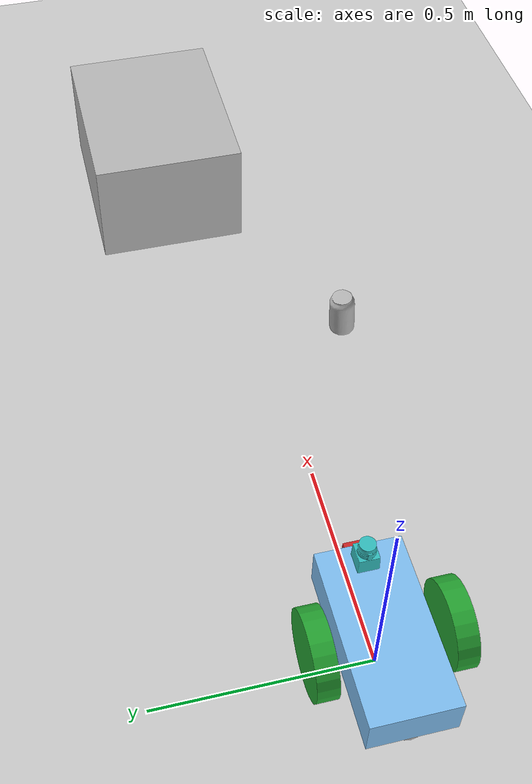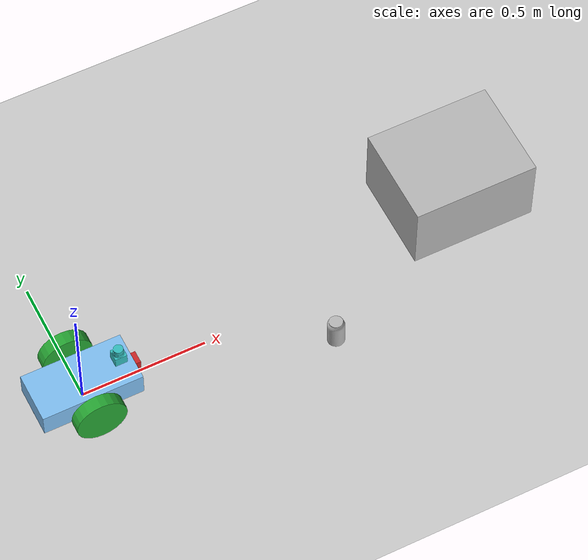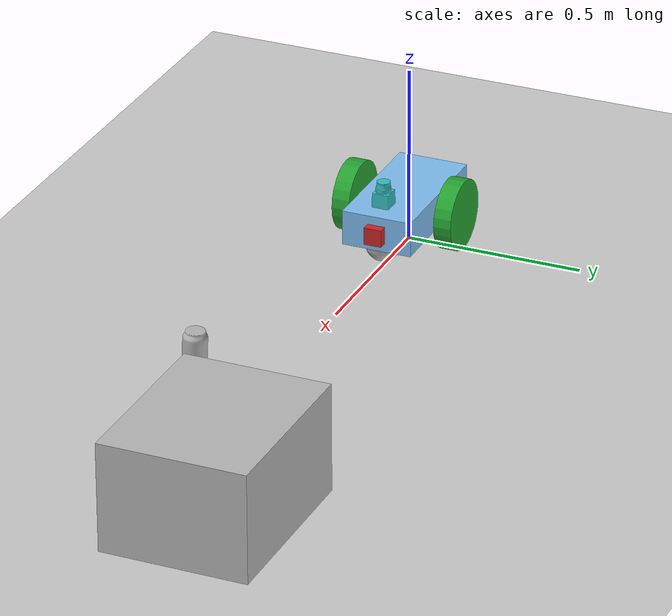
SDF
<sdf version="1.6">
 <world name="default">
  <model name="ground_plane">
   <static>1</static>
   <link name="link">
    <collision name="collision">
     <geometry><plane><normal>0 0 1</normal><size>100 100</size></plane></geometry>
     <surface><friction><ode><mu>100</mu><mu2>50</mu2></ode></friction></surface>
    </collision>
    <visual name="visual">
     <cast_shadows>0</cast_shadows>
     <geometry><plane><normal>0 0 1</normal><size>100 100</size></plane></geometry>
     <material>
      <script><uri>file://media/materials/scripts/gazebo.material</uri><name>Gazebo/Grey</name></script>
     </material>
    </visual>
   </link>
  </model>
  <light name="sun" type="directional">
   <pose>0 0 10 0 -0 0</pose>
   <diffuse>0.8 0.8 0.8 1</diffuse>
   <specular>0.2 0.2 0.2 1</specular>
   <attenuation>
    <range>1000</range>
    <constant>0.9</constant>
    <linear>0.01</linear>
    <quadratic>0.001</quadratic>
   </attenuation>
   <direction>-0.5 0.1 -0.9</direction>
  </light>
  <gravity>0 0 -9.8</gravity>
  <magnetic_field>6e-06 2.3e-05 -4.2e-05</magnetic_field>
  <atmosphere type="adiabatic"/>
  <physics name="default_physics" default="0" type="ode">
   <max_step_size>0.001</max_step_size>
   <real_time_factor>1</real_time_factor>
   <real_time_update_rate>1000</real_time_update_rate>
  </physics>
  <scene><ambient>0.4 0.4 0.4 1</ambient><background>0.7 0.7 0.7 1</background><shadows>1</shadows></scene>
  <spherical_coordinates>
   <surface_model>EARTH_WGS84</surface_model>
   <latitude_deg>0</latitude_deg>
   <longitude_deg>0</longitude_deg>
   <elevation>0</elevation>
   <heading_deg>0</heading_deg>
  </spherical_coordinates>
  <model name="my_robot">
   <link name="robot_footprint">
    <inertial>
     <pose>0.001325 0 0 0 -0 0</pose>
     <mass>15.1</mass>
     <inertia>
      <ixx>0.100002</ixx>
      <ixy>0</ixy>
      <ixz>-1.48675e-07</ixz>
      <iyy>0.103976</iyy>
      <iyz>0</iyz>
      <izz>0.103976</izz>
     </inertia>
    </inertial>
    <collision name="robot_footprint_fixed_joint_lump__collision_collision">
     <geometry><box><size>0.4 0.2 0.1</size></box></geometry>
    </collision>
    <collision name="robot_footprint_fixed_joint_lump__back_caster_collision_collision_1">
     <pose>-0.15 0 -0.05 0 -0 0</pose>
     <geometry><sphere><radius>0.0499</radius></sphere></geometry>
    </collision>
    <collision name="robot_footprint_fixed_joint_lump__front_caster_collision_collision_2">
     <pose>0.15 0 -0.05 0 -0 0</pose>
     <geometry><sphere><radius>0.0499</radius></sphere></geometry>
    </collision>
    <collision name="robot_footprint_fixed_joint_lump__camera_collision_3">
     <pose>0.2 0 0 0 -0 0</pose>
     <geometry><box><size>0.05 0.05 0.05</size></box></geometry>
    </collision>
    <collision name="robot_footprint_fixed_joint_lump__hokuyo_collision_4">
     <pose>0.15 0 0.1 0 -0 0</pose>
     <geometry><box><size>0.1 0.1 0.1</size></box></geometry>
    </collision>
    <visual name="robot_footprint_fixed_joint_lump__chassis_visual_visual">
     <geometry><box><size>0.4 0.2 0.1</size></box></geometry>
     <material>
      <script><name>Gazebo/SkyBlue</name><uri>file://media/materials/scripts/gazebo.material</uri></script>
     </material>
    </visual>
    <visual name="robot_footprint_fixed_joint_lump__back_caster_visual_visual_1">
     <pose>-0.15 0 -0.05 0 -0 0</pose>
     <geometry><sphere><radius>0.05</radius></sphere></geometry>
    </visual>
    <visual name="robot_footprint_fixed_joint_lump__front_caster_visual_visual_2">
     <pose>0.15 0 -0.05 0 -0 0</pose>
     <geometry><sphere><radius>0.05</radius></sphere></geometry>
    </visual>
    <visual name="robot_footprint_fixed_joint_lump__camera_visual_3">
     <pose>0.2 0 0 0 -0 0</pose>
     <geometry><box><size>0.05 0.05 0.05</size></box></geometry>
     <material>
      <script><name>Gazebo/Red</name><uri>file://media/materials/scripts/gazebo.material</uri></script>
     </material>
    </visual>
    <visual name="robot_footprint_fixed_joint_lump__hokuyo_visual_4">
     <pose>0.15 0 0.1 0 -0 0</pose>
     <geometry>
      <mesh><scale>1 1 1</scale><uri>/home/robond/workspace/catkin_ws/src/my_robot/meshes/hokuyo.dae</uri></mesh>
     </geometry>
     <material>
      <script><name>Gazebo/Turquoise</name><uri>file://media/materials/scripts/gazebo.material</uri></script>
     </material>
    </visual>
    <sensor name="camera1" type="camera">
     <update_rate>30</update_rate>
     <camera name="head">
      <horizontal_fov>1.39626</horizontal_fov>
      <image><width>800</width><height>800</height><format>R8G8B8</format></image>
      <clip><near>0.02</near><far>300</far></clip>
     </camera>
     <plugin name="camera_controller" filename="libgazebo_ros_camera.so">
      <alwaysOn>true</alwaysOn>
      <updateRate>0.0</updateRate>
      <cameraName>camera</cameraName>
      <imageTopicName>rgb/image_raw</imageTopicName>
      <cameraInfoTopicName>rgb/camera_info</cameraInfoTopicName>
      <frameName>camera</frameName>
      <hackBaseline>0.07</hackBaseline>
      <distortionK1>0.0</distortionK1>
      <distortionK2>0.0</distortionK2>
      <distortionK3>0.0</distortionK3>
      <distortionT1>0.0</distortionT1>
      <distortionT2>0.0</distortionT2>
      <robotNamespace>/</robotNamespace>
     </plugin>
     <pose>0.2 0 0 0 -0 0</pose>
    </sensor>
    <sensor name="head_hokuyo_sensor" type="ray">
     <visualize>0</visualize>
     <update_rate>40</update_rate>
     <ray>
      <scan>
       <horizontal>
        <samples>720</samples>
        <resolution>1</resolution>
        <min_angle>-1.5708</min_angle>
        <max_angle>1.5708</max_angle>
       </horizontal>
       <vertical><samples>1</samples><min_angle>0</min_angle><max_angle>0</max_angle></vertical>
      </scan>
      <range><min>0.1</min><max>30</max><resolution>0.01</resolution></range>
      <noise><type>gaussian</type><mean>0</mean><stddev>0.01</stddev></noise>
     </ray>
     <plugin name="gazebo_ros_head_hokuyo_controller" filename="libgazebo_ros_laser.so">
      <topicName>/scan</topicName>
      <frameName>hokuyo</frameName>
      <robotNamespace>/</robotNamespace>
     </plugin>
     <pose>0.15 0 0.1 0 -0 0</pose>
    </sensor>
   </link>
   <link name="left_wheel">
    <pose>0 0.15 0 0 -0 0</pose>
    <inertial>
     <pose>0 0 0 1.57079 1.57079 3.14159</pose>
     <mass>5</mass>
     <inertia><ixx>0.1</ixx><ixy>0</ixy><ixz>0</ixz><iyy>0.1</iyy><iyz>0</iyz><izz>0.1</izz></inertia>
    </inertial>
    <collision name="left_wheel_collision">
     <pose>0 0 0 -3.14158 1.57079 -1.57078</pose>
     <geometry><cylinder><length>0.05</length><radius>0.1</radius></cylinder></geometry>
    </collision>
    <visual name="left_wheel_visual">
     <pose>0 0 0 -3.14158 1.57079 -1.57078</pose>
     <geometry><cylinder><length>0.05</length><radius>0.1</radius></cylinder></geometry>
     <material>
      <script><name>Gazebo/Green</name><uri>file://media/materials/scripts/gazebo.material</uri></script>
     </material>
    </visual>
   </link>
   <joint name="left_wheel_hinge" type="revolute">
    <child>left_wheel</child>
    <parent>robot_footprint</parent>
    <axis>
     <xyz>0 1 0</xyz>
     <limit><lower>-1e+16</lower><upper>1e+16</upper></limit>
     <dynamics>
      <damping>1</damping>
      <friction>1</friction>
      <spring_reference>0</spring_reference>
      <spring_stiffness>0</spring_stiffness>
     </dynamics>
     <use_parent_model_frame>1</use_parent_model_frame>
    </axis>
   </joint>
   <link name="right_wheel">
    <pose>0 -0.15 0 0 -0 0</pose>
    <inertial>
     <pose>0 0 0 1.57079 1.57079 3.14159</pose>
     <mass>5</mass>
     <inertia><ixx>0.1</ixx><ixy>0</ixy><ixz>0</ixz><iyy>0.1</iyy><iyz>0</iyz><izz>0.1</izz></inertia>
    </inertial>
    <collision name="right_wheel_collision">
     <pose>0 0 0 -3.14158 1.57079 -1.57078</pose>
     <geometry><cylinder><length>0.05</length><radius>0.1</radius></cylinder></geometry>
    </collision>
    <visual name="right_wheel_visual">
     <pose>0 0 0 -3.14158 1.57079 -1.57078</pose>
     <geometry><cylinder><length>0.05</length><radius>0.1</radius></cylinder></geometry>
     <material>
      <script><name>Gazebo/Green</name><uri>file://media/materials/scripts/gazebo.material</uri></script>
     </material>
    </visual>
   </link>
   <joint name="right_wheel_hinge" type="revolute">
    <child>right_wheel</child>
    <parent>robot_footprint</parent>
    <axis>
     <xyz>0 1 0</xyz>
     <limit><lower>-1e+16</lower><upper>1e+16</upper></limit>
     <dynamics>
      <damping>1</damping>
      <friction>1</friction>
      <spring_reference>0</spring_reference>
      <spring_stiffness>0</spring_stiffness>
     </dynamics>
     <use_parent_model_frame>1</use_parent_model_frame>
    </axis>
   </joint>
   <static>0</static>
   <plugin name="differential_drive_controller" filename="libgazebo_ros_diff_drive.so">
    <legacyMode>false</legacyMode>
    <alwaysOn>true</alwaysOn>
    <updateRate>10</updateRate>
    <leftJoint>left_wheel_hinge</leftJoint>
    <rightJoint>right_wheel_hinge</rightJoint>
    <wheelSeparation>0.4</wheelSeparation>
    <wheelDiameter>0.2</wheelDiameter>
    <torque>10</torque>
    <commandTopic>cmd_vel</commandTopic>
    <odometryTopic>odom</odometryTopic>
    <odometryFrame>odom</odometryFrame>
    <robotBaseFrame>robot_footprint</robotBaseFrame>
    <publishWheelTF>false</publishWheelTF>
    <publishWheelJointState>false</publishWheelJointState>
    <rosDebugLevel>na</rosDebugLevel>
    <wheelAcceleration>0</wheelAcceleration>
    <wheelTorque>5</wheelTorque>
    <odometrySource>world</odometrySource>
    <publishTf>1</publishTf>
    <publishOdomTF>true</publishOdomTF>
    <robotNamespace>/</robotNamespace>
   </plugin>
   <pose>-1.8e-05 -0.012256 0.1 2e-06 0.000459 0.001884</pose>
  </model>
  <model name="cardboard_box">
   <pose>1.61602 0.171784 0.149 0 -0 0</pose>
   <link name="link">
    <inertial>
     <mass>2</mass>
     <inertia>
      <ixx>0.0416667</ixx>
      <ixy>0</ixy>
      <ixz>0</ixz>
      <iyy>0.0566667</iyy>
      <iyz>0</iyz>
      <izz>0.0683333</izz>
     </inertia>
    </inertial>
    <collision name="collision">
     <geometry><box><size>0.5 0.4 0.3</size></box></geometry>
     <surface>
      <friction><ode><mu>1</mu><mu2>1</mu2></ode></friction>
      <contact><ode><kp>1e+07</kp><kd>1</kd><min_depth>0.001</min_depth><max_vel>0.1</max_vel></ode></contact>
     </surface>
    </collision>
    <visual name="visual">
     <pose>0 0 -0.15 0 -0 0</pose>
     <geometry>
      <mesh><uri>model://cardboard_box/meshes/cardboard_box.dae</uri><scale>1.25932 1.00745 0.755591</scale></mesh>
     </geometry>
    </visual>
   </link>
  </model>
  <model name="coke_can">
   <link name="link">
    <inertial>
     <pose>0 0 0.06 0 -0 0</pose>
     <mass>0.39</mass>
     <inertia>
      <ixx>0.00055575</ixx>
      <ixy>0</ixy>
      <ixz>0</ixz>
      <iyy>0.00055575</iyy>
      <iyz>0</iyz>
      <izz>0.0001755</izz>
     </inertia>
    </inertial>
    <collision name="collision">
     <pose>0.003937 0.004724 -0.18 0 -0 0</pose>
     <geometry><mesh><uri>model://coke_can/meshes/coke_can.dae</uri></mesh></geometry>
     <surface>
      <friction><ode><mu>1</mu><mu2>1</mu2></ode></friction>
      <contact><ode><kp>1e+07</kp><kd>1</kd><min_depth>0.001</min_depth><max_vel>0.1</max_vel></ode></contact>
     </surface>
    </collision>
    <visual name="visual">
     <pose>0.003937 0.004724 -0.18 0 -0 0</pose>
     <geometry><mesh><uri>model://coke_can/meshes/coke_can.dae</uri></mesh></geometry>
    </visual>
   </link>
   <pose>0.9411 -0.206703 -0.002659 -0.055112 0.007741 -0.000483</pose>
  </model>
 </world>
</sdf>
